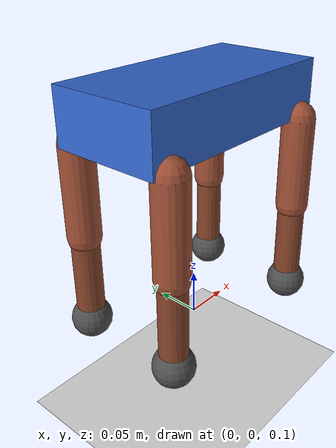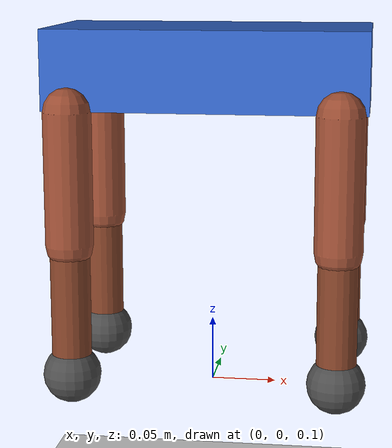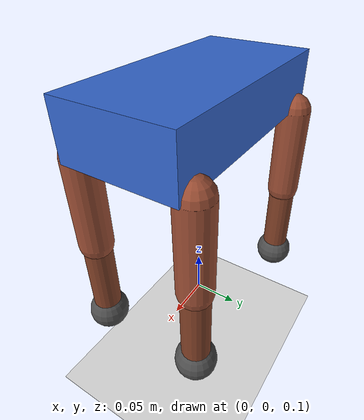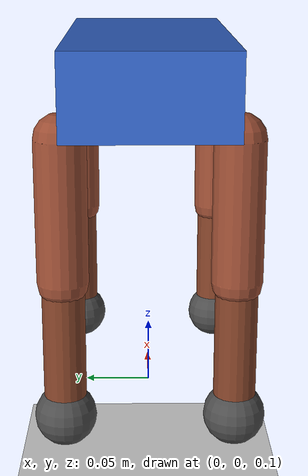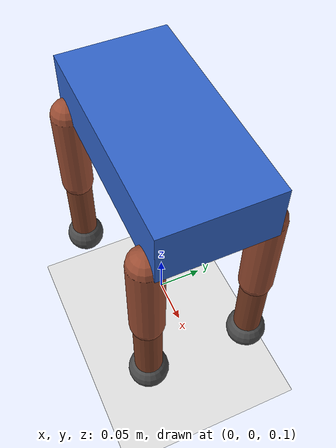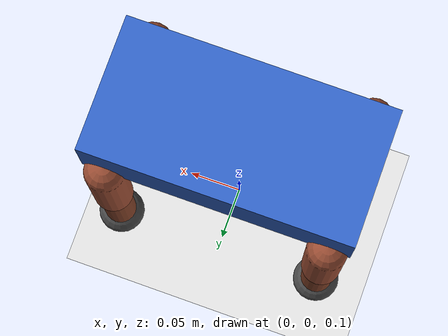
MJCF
<mujoco model="robot_dog">
  <compiler angle="degree" coordinate="local"/>

  <option timestep="0.002" integrator="implicitfast" solver="Newton" iterations="50"/>

  <default>
    <joint damping="2.0" limited="true" armature="0.1"/>
    <geom condim="3" friction="1.0 0.005 0.0001"/>
    <motor ctrllimited="true" ctrlrange="-1 1"/>
  </default>

  <worldbody>
    <geom type="plane" size="10 10 0.1" rgba="0.9 0.9 0.9 1" friction="1.0 0.005 0.0001"/>
    <light pos="0 0 3" dir="0 0 -1"/>

    <body name="torso" pos="0 0 0.35">
      <freejoint/>
      <geom type="box" size="0.12 0.06 0.03" rgba="0.2 0.4 0.8 1"/>
      <inertial pos="0 0 0" mass="2.0" diaginertia="0.02 0.02 0.01"/>
      <body name="fl_thigh" pos="0.1 0.06 -0.03">
        <joint name="fl_hip" type="hinge" axis="0 1 0" range="-45 45" damping="2.0"/>
        <geom type="capsule" fromto="0 0 0 0 0 -0.1" size="0.018" rgba="0.6 0.3 0.2 1"/>
        <inertial pos="0 0 -0.05" mass="0.2" diaginertia="0.001 0.001 0.0001"/>
        <body name="fl_shin" pos="0 0 -0.1">
          <joint name="fl_knee" type="hinge" axis="0 1 0" range="-90 10" damping="2.0"/>
          <geom type="capsule" fromto="0 0 0 0 0 -0.1" size="0.015" rgba="0.5 0.25 0.15 1"/>
          <inertial pos="0 0 -0.05" mass="0.15" diaginertia="0.001 0.001 0.0001"/>
          <geom type="sphere" pos="0 0 -0.1" size="0.022" rgba="0.3 0.3 0.3 1" friction="1.2 0.005 0.0001"/>
        </body>
      </body>

      <body name="fr_thigh" pos="0.1 -0.06 -0.03">
        <joint name="fr_hip" type="hinge" axis="0 1 0" range="-45 45" damping="2.0"/>
        <geom type="capsule" fromto="0 0 0 0 0 -0.1" size="0.018" rgba="0.6 0.3 0.2 1"/>
        <inertial pos="0 0 -0.05" mass="0.2" diaginertia="0.001 0.001 0.0001"/>

        <body name="fr_shin" pos="0 0 -0.1">
          <joint name="fr_knee" type="hinge" axis="0 1 0" range="-90 10" damping="2.0"/>
          <geom type="capsule" fromto="0 0 0 0 0 -0.1" size="0.015" rgba="0.5 0.25 0.15 1"/>
          <inertial pos="0 0 -0.05" mass="0.15" diaginertia="0.001 0.001 0.0001"/>
          <geom type="sphere" pos="0 0 -0.1" size="0.022" rgba="0.3 0.3 0.3 1" friction="1.2 0.005 0.0001"/>
        </body>
      </body>

      <body name="bl_thigh" pos="-0.1 0.06 -0.03">
        <joint name="bl_hip" type="hinge" axis="0 1 0" range="-45 45" damping="2.0"/>
        <geom type="capsule" fromto="0 0 0 0 0 -0.1" size="0.018" rgba="0.6 0.3 0.2 1"/>
        <inertial pos="0 0 -0.05" mass="0.2" diaginertia="0.001 0.001 0.0001"/>

        <body name="bl_shin" pos="0 0 -0.1">
          <joint name="bl_knee" type="hinge" axis="0 1 0" range="-90 10" damping="2.0"/>
          <geom type="capsule" fromto="0 0 0 0 0 -0.1" size="0.015" rgba="0.5 0.25 0.15 1"/>
          <inertial pos="0 0 -0.05" mass="0.15" diaginertia="0.001 0.001 0.0001"/>
          <geom type="sphere" pos="0 0 -0.1" size="0.022" rgba="0.3 0.3 0.3 1" friction="1.2 0.005 0.0001"/>
        </body>
      </body>

      <body name="br_thigh" pos="-0.1 -0.06 -0.03">
        <joint name="br_hip" type="hinge" axis="0 1 0" range="-45 45" damping="2.0"/>
        <geom type="capsule" fromto="0 0 0 0 0 -0.1" size="0.018" rgba="0.6 0.3 0.2 1"/>
        <inertial pos="0 0 -0.05" mass="0.2" diaginertia="0.001 0.001 0.0001"/>

        <body name="br_shin" pos="0 0 -0.1">
          <joint name="br_knee" type="hinge" axis="0 1 0" range="-90 10" damping="2.0"/>
          <geom type="capsule" fromto="0 0 0 0 0 -0.1" size="0.015" rgba="0.5 0.25 0.15 1"/>
          <inertial pos="0 0 -0.05" mass="0.15" diaginertia="0.001 0.001 0.0001"/>
          <geom type="sphere" pos="0 0 -0.1" size="0.022" rgba="0.3 0.3 0.3 1" friction="1.2 0.005 0.0001"/>
        </body>
      </body>
    </body>
  </worldbody>

  <actuator>
    <motor joint="fl_hip" gear="20" ctrllimited="true" ctrlrange="-1 1"/>
    <motor joint="fl_knee" gear="20" ctrllimited="true" ctrlrange="-1 1"/>
    <motor joint="fr_hip" gear="20" ctrllimited="true" ctrlrange="-1 1"/>
    <motor joint="fr_knee" gear="20" ctrllimited="true" ctrlrange="-1 1"/>
    <motor joint="bl_hip" gear="20" ctrllimited="true" ctrlrange="-1 1"/>
    <motor joint="bl_knee" gear="20" ctrllimited="true" ctrlrange="-1 1"/>
    <motor joint="br_hip" gear="20" ctrllimited="true" ctrlrange="-1 1"/>
    <motor joint="br_knee" gear="20" ctrllimited="true" ctrlrange="-1 1"/>
  </actuator>
</mujoco>
